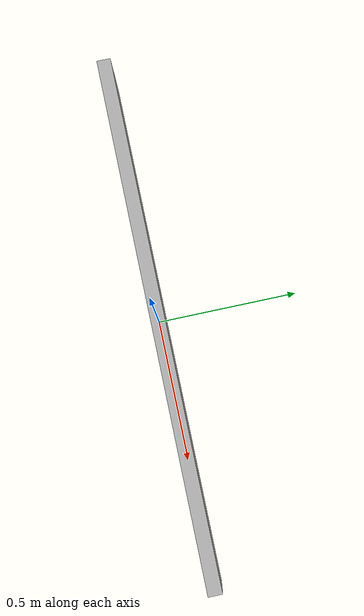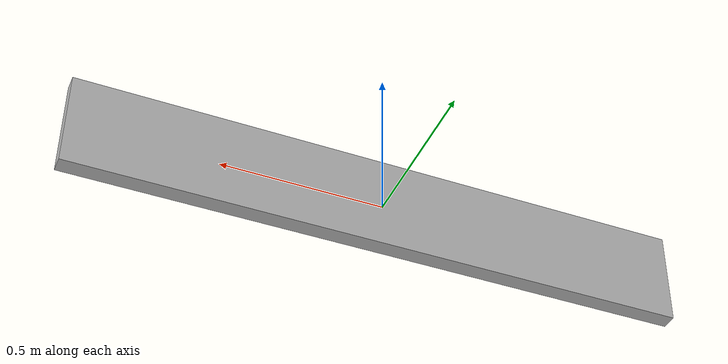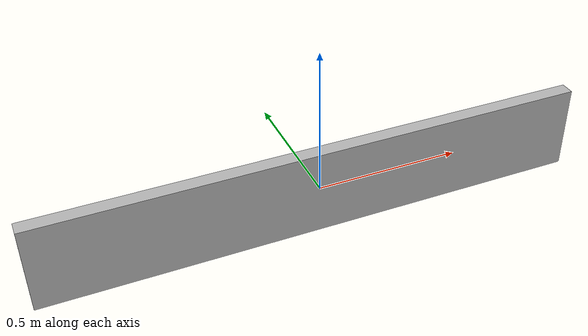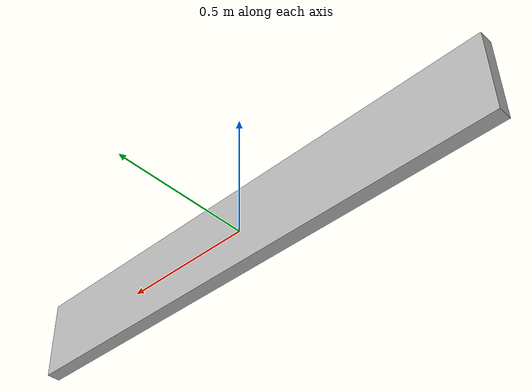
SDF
<?xml version="1.0"?>

<sdf version="1.5">
    <model name="wall_x">
        <static>true</static>
        <link name="link">
            <collision name="collision">
                <geometry>
                    <box>
                        <size>1.0 0.05 0.3</size>
                    </box>
                </geometry>
            </collision>
            <visual name="visual">
                <cast_shadows>true</cast_shadows>
                <geometry>
                <box>
                    <size>1.9 0.05 0.3</size>
                </box>
                </geometry>
            </visual>
        </link>
    </model>
</sdf>
